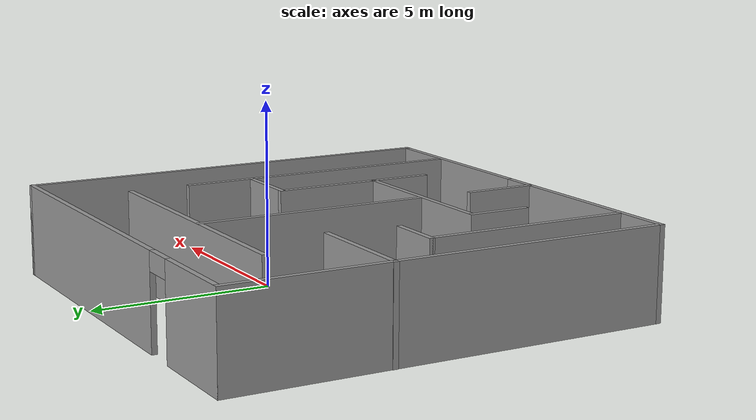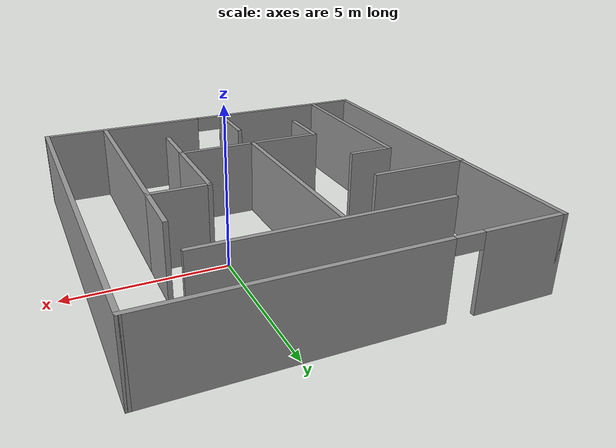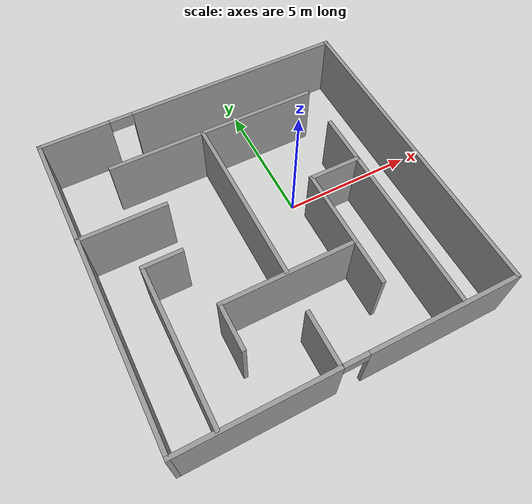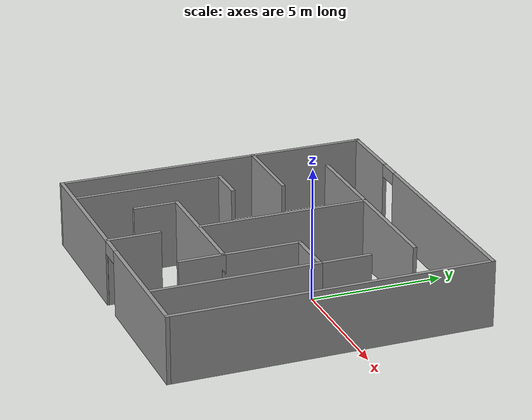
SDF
<?xml version='1.0'?>
<sdf version='1.6'>
  <model name='maze'>
    <pose frame=''>-1.76455 -0.92591 0 0 -0 0</pose>
    <link name='Wall_0'>
      <pose frame=''>0.006534 -5.925 0 0 -0 3.14159</pose>
      <visual name='Wall_0_Visual_0'>
        <pose frame=''>-3.22455 0 1.25 0 -0 0</pose>
        <geometry>
          <box>
            <size>5.5509 0.15 2.5</size>
          </box>
        </geometry>
        <material>
          <script>
            <uri>file://media/materials/scripts/gazebo.material</uri>
            <name>Gazebo/Grey</name>
          </script>
          <ambient>1 1 1 1</ambient>
        </material>
        <meta>
          <layer>0</layer>
        </meta>
      </visual>
      <collision name='Wall_0_Collision_0'>
        <geometry>
          <box>
            <size>5.5509 0.15 2.5</size>
          </box>
        </geometry>
        <pose frame=''>-3.22455 0 1.25 0 -0 0</pose>
      </collision>
      <visual name='Wall_0_Visual_1'>
        <pose frame=''>3.22545 0 1.25 0 -0 0</pose>
        <geometry>
          <box>
            <size>5.5491 0.15 2.5</size>
          </box>
        </geometry>
        <material>
          <script>
            <uri>file://media/materials/scripts/gazebo.material</uri>
            <name>Gazebo/Grey</name>
          </script>
          <ambient>1 1 1 1</ambient>
        </material>
        <meta>
          <layer>0</layer>
        </meta>
      </visual>
      <collision name='Wall_0_Collision_1'>
        <geometry>
          <box>
            <size>5.5491 0.15 2.5</size>
          </box>
        </geometry>
        <pose frame=''>3.22545 0 1.25 0 -0 0</pose>
      </collision>
      <visual name='Wall_0_Visual_2'>
        <pose frame=''>0.000904 0 2.25 0 -0 0</pose>
        <geometry>
          <box>
            <size>0.9 0.15 0.5</size>
          </box>
        </geometry>
        <material>
          <script>
            <uri>file://media/materials/scripts/gazebo.material</uri>
            <name>Gazebo/Grey</name>
          </script>
          <ambient>1 1 1 1</ambient>
        </material>
        <meta>
          <layer>0</layer>
        </meta>
      </visual>
      <collision name='Wall_0_Collision_2'>
        <geometry>
          <box>
            <size>0.9 0.15 0.5</size>
          </box>
        </geometry>
        <pose frame=''>0.000904 0 2.25 0 -0 0</pose>
      </collision>
    </link>
    <link name='Wall_10'>
      <collision name='Wall_10_Collision'>
        <geometry>
          <box>
            <size>8 0.15 2.5</size>
          </box>
        </geometry>
        <pose frame=''>0 0 1.25 0 -0 0</pose>
      </collision>
      <visual name='Wall_10_Visual'>
        <pose frame=''>0 0 1.25 0 -0 0</pose>
        <geometry>
          <box>
            <size>8 0.15 2.5</size>
          </box>
        </geometry>
        <material>
          <script>
            <uri>file://media/materials/scripts/gazebo.material</uri>
            <name>Gazebo/Grey</name>
          </script>
          <ambient>1 1 1 1</ambient>
        </material>
        <meta>
          <layer>0</layer>
        </meta>
      </visual>
      <pose frame=''>-0.02748 3.8782 0 0 -0 0</pose>
    </link>
    <link name='Wall_12'>
      <collision name='Wall_12_Collision'>
        <geometry>
          <box>
            <size>2 0.15 2.5</size>
          </box>
        </geometry>
        <pose frame=''>0 0 1.25 0 -0 0</pose>
      </collision>
      <visual name='Wall_12_Visual'>
        <pose frame=''>0 0 1.25 0 -0 0</pose>
        <geometry>
          <box>
            <size>2 0.15 2.5</size>
          </box>
        </geometry>
        <material>
          <script>
            <uri>file://media/materials/scripts/gazebo.material</uri>
            <name>Gazebo/Grey</name>
          </script>
          <ambient>1 1 1 1</ambient>
        </material>
        <meta>
          <layer>0</layer>
        </meta>
      </visual>
      <pose frame=''>-0.505094 -4.93248 0 0 -0 1.5708</pose>
    </link>
    <link name='Wall_14'>
      <collision name='Wall_14_Collision'>
        <geometry>
          <box>
            <size>1.75 0.15 2.5</size>
          </box>
        </geometry>
        <pose frame=''>0 0 1.25 0 -0 0</pose>
      </collision>
      <visual name='Wall_14_Visual'>
        <pose frame=''>0 0 1.25 0 -0 0</pose>
        <geometry>
          <box>
            <size>1.75 0.15 2.5</size>
          </box>
        </geometry>
        <material>
          <script>
            <uri>file://media/materials/scripts/gazebo.material</uri>
            <name>Gazebo/Grey</name>
          </script>
          <ambient>1 1 1 1</ambient>
        </material>
        <meta>
          <layer>0</layer>
        </meta>
      </visual>
      <pose frame=''>-2.77143 -3.33379 0 0 -0 1.5708</pose>
    </link>
    <link name='Wall_18'>
      <collision name='Wall_18_Collision'>
        <geometry>
          <box>
            <size>6.5 0.15 2.5</size>
          </box>
        </geometry>
        <pose frame=''>0 0 1.25 0 -0 0</pose>
      </collision>
      <visual name='Wall_18_Visual'>
        <pose frame=''>0 0 1.25 0 -0 0</pose>
        <geometry>
          <box>
            <size>6.5 0.15 2.5</size>
          </box>
        </geometry>
        <material>
          <script>
            <uri>file://media/materials/scripts/gazebo.material</uri>
            <name>Gazebo/Grey</name>
          </script>
          <ambient>1 1 1 1</ambient>
        </material>
        <meta>
          <layer>0</layer>
        </meta>
      </visual>
      <pose frame=''>-0.441253 0.703195 0 0 -0 -1.5708</pose>
    </link>
    <link name='Wall_20'>
      <collision name='Wall_20_Collision'>
        <geometry>
          <box>
            <size>5 0.15 2.5</size>
          </box>
        </geometry>
        <pose frame=''>0 0 1.25 0 -0 0</pose>
      </collision>
      <visual name='Wall_20_Visual'>
        <pose frame=''>0 0 1.25 0 -0 0</pose>
        <geometry>
          <box>
            <size>5 0.15 2.5</size>
          </box>
        </geometry>
        <material>
          <script>
            <uri>file://media/materials/scripts/gazebo.material</uri>
            <name>Gazebo/Grey</name>
          </script>
          <ambient>1 1 1 1</ambient>
        </material>
        <meta>
          <layer>0</layer>
        </meta>
      </visual>
      <pose frame=''>-0.346431 -2.53378 0 0 -0 0</pose>
    </link>
    <link name='Wall_21'>
      <collision name='Wall_21_Collision'>
        <geometry>
          <box>
            <size>1.75 0.15 2.5</size>
          </box>
        </geometry>
        <pose frame=''>0 0 1.25 0 -0 0</pose>
      </collision>
      <visual name='Wall_21_Visual'>
        <pose frame=''>0 0 1.25 0 -0 0</pose>
        <geometry>
          <box>
            <size>1.75 0.15 2.5</size>
          </box>
        </geometry>
        <material>
          <script>
            <uri>file://media/materials/scripts/gazebo.material</uri>
            <name>Gazebo/Grey</name>
          </script>
          <ambient>1 1 1 1</ambient>
        </material>
        <meta>
          <layer>0</layer>
        </meta>
      </visual>
      <pose frame=''>2.07857 -3.33379 0 0 -0 -1.5708</pose>
    </link>
    <link name='Wall_23'>
      <collision name='Wall_23_Collision'>
        <geometry>
          <box>
            <size>3 0.15 2.5</size>
          </box>
        </geometry>
        <pose frame=''>0 0 1.25 0 -0 0</pose>
      </collision>
      <visual name='Wall_23_Visual'>
        <pose frame=''>0 0 1.25 0 -0 0</pose>
        <geometry>
          <box>
            <size>3 0.15 2.5</size>
          </box>
        </geometry>
        <material>
          <script>
            <uri>file://media/materials/scripts/gazebo.material</uri>
            <name>Gazebo/Grey</name>
          </script>
          <ambient>1 1 1 1</ambient>
        </material>
        <meta>
          <layer>0</layer>
        </meta>
      </visual>
      <pose frame=''>2.07857 -1.10878 0 0 -0 1.5708</pose>
    </link>
    <link name='Wall_25'>
      <collision name='Wall_25_Collision'>
        <geometry>
          <box>
            <size>2 0.15 2.5</size>
          </box>
        </geometry>
        <pose frame=''>0 0 1.25 0 -0 0</pose>
      </collision>
      <visual name='Wall_25_Visual'>
        <pose frame=''>0 0 1.25 0 -0 0</pose>
        <geometry>
          <box>
            <size>2 0.15 2.5</size>
          </box>
        </geometry>
        <material>
          <script>
            <uri>file://media/materials/scripts/gazebo.material</uri>
            <name>Gazebo/Grey</name>
          </script>
          <ambient>1 1 1 1</ambient>
        </material>
        <meta>
          <layer>0</layer>
        </meta>
      </visual>
      <pose frame=''>3.00357 0.316216 0 0 -0 0</pose>
    </link>
    <link name='Wall_26'>
      <collision name='Wall_26_Collision'>
        <geometry>
          <box>
            <size>2 0.15 2.5</size>
          </box>
        </geometry>
        <pose frame=''>0 0 1.25 0 -0 0</pose>
      </collision>
      <visual name='Wall_26_Visual'>
        <pose frame=''>0 0 1.25 0 -0 0</pose>
        <geometry>
          <box>
            <size>2 0.15 2.5</size>
          </box>
        </geometry>
        <material>
          <script>
            <uri>file://media/materials/scripts/gazebo.material</uri>
            <name>Gazebo/Grey</name>
          </script>
          <ambient>1 1 1 1</ambient>
        </material>
        <meta>
          <layer>0</layer>
        </meta>
      </visual>
      <pose frame=''>3.92857 1.24122 0 0 -0 1.5708</pose>
    </link>
    <link name='Wall_28'>
      <collision name='Wall_28_Collision'>
        <geometry>
          <box>
            <size>6.25 0.15 2.5</size>
          </box>
        </geometry>
        <pose frame=''>0 0 1.25 0 -0 0</pose>
      </collision>
      <visual name='Wall_28_Visual'>
        <pose frame=''>0 0 1.25 0 -0 0</pose>
        <geometry>
          <box>
            <size>6.25 0.15 2.5</size>
          </box>
        </geometry>
        <material>
          <script>
            <uri>file://media/materials/scripts/gazebo.material</uri>
            <name>Gazebo/Grey</name>
          </script>
          <ambient>1 1 1 1</ambient>
        </material>
        <meta>
          <layer>0</layer>
        </meta>
      </visual>
      <pose frame=''>3.92857 -2.73378 0 0 -0 -1.5708</pose>
    </link>
    <link name='Wall_30'>
      <collision name='Wall_30_Collision'>
        <geometry>
          <box>
            <size>5.75 0.15 2.5</size>
          </box>
        </geometry>
        <pose frame=''>0 0 1.25 0 -0 0</pose>
      </collision>
      <visual name='Wall_30_Visual'>
        <pose frame=''>0 0 1.25 0 -0 0</pose>
        <geometry>
          <box>
            <size>5.75 0.15 2.5</size>
          </box>
        </geometry>
        <material>
          <script>
            <uri>file://media/materials/scripts/gazebo.material</uri>
            <name>Gazebo/Grey</name>
          </script>
          <ambient>1 1 1 1</ambient>
        </material>
        <meta>
          <layer>0</layer>
        </meta>
      </visual>
      <pose frame=''>-4.41991 -3.07357 0 0 -0 1.5708</pose>
    </link>
    <link name='Wall_31'>
      <collision name='Wall_31_Collision'>
        <geometry>
          <box>
            <size>1.5 0.15 2.5</size>
          </box>
        </geometry>
        <pose frame=''>0 0 1.25 0 -0 0</pose>
      </collision>
      <visual name='Wall_31_Visual'>
        <pose frame=''>0 0 1.25 0 -0 0</pose>
        <geometry>
          <box>
            <size>1.5 0.15 2.5</size>
          </box>
        </geometry>
        <material>
          <script>
            <uri>file://media/materials/scripts/gazebo.material</uri>
            <name>Gazebo/Grey</name>
          </script>
          <ambient>1 1 1 1</ambient>
        </material>
        <meta>
          <layer>0</layer>
        </meta>
      </visual>
      <pose frame=''>-3.74492 -0.273568 0 0 -0 0</pose>
    </link>
    <link name='Wall_4'>
      <collision name='Wall_4_Collision'>
        <geometry>
          <box>
            <size>12 0.15 2.5</size>
          </box>
        </geometry>
        <pose frame=''>0 0 1.25 0 -0 0</pose>
      </collision>
      <visual name='Wall_4_Visual'>
        <pose frame=''>0 0 1.25 0 -0 0</pose>
        <geometry>
          <box>
            <size>12 0.15 2.5</size>
          </box>
        </geometry>
        <material>
          <script>
            <uri>file://media/materials/scripts/gazebo.material</uri>
            <name>Gazebo/Grey</name>
          </script>
          <ambient>1 1 1 1</ambient>
        </material>
        <meta>
          <layer>0</layer>
        </meta>
      </visual>
      <pose frame=''>-5.91847 0 0 0 -0 1.5708</pose>
    </link>
    <link name='Wall_5'>
      <pose frame=''>0.006534 5.925 0 0 -0 0</pose>
      <visual name='Wall_5_Visual_0'>
        <pose frame=''>-4.6459 0 1.25 0 -0 0</pose>
        <geometry>
          <box>
            <size>2.70819 0.15 2.5</size>
          </box>
        </geometry>
        <material>
          <script>
            <uri>file://media/materials/scripts/gazebo.material</uri>
            <name>Gazebo/Grey</name>
          </script>
          <ambient>1 1 1 1</ambient>
        </material>
        <meta>
          <layer>0</layer>
        </meta>
      </visual>
      <collision name='Wall_5_Collision_0'>
        <geometry>
          <box>
            <size>2.70819 0.15 2.5</size>
          </box>
        </geometry>
        <pose frame=''>-4.6459 0 1.25 0 -0 0</pose>
      </collision>
      <visual name='Wall_5_Visual_1'>
        <pose frame=''>1.8041 0 1.25 0 -0 0</pose>
        <geometry>
          <box>
            <size>8.3918 0.15 2.5</size>
          </box>
        </geometry>
        <material>
          <script>
            <uri>file://media/materials/scripts/gazebo.material</uri>
            <name>Gazebo/Grey</name>
          </script>
          <ambient>1 1 1 1</ambient>
        </material>
        <meta>
          <layer>0</layer>
        </meta>
      </visual>
      <collision name='Wall_5_Collision_1'>
        <geometry>
          <box>
            <size>8.3918 0.15 2.5</size>
          </box>
        </geometry>
        <pose frame=''>1.8041 0 1.25 0 -0 0</pose>
      </collision>
      <visual name='Wall_5_Visual_2'>
        <pose frame=''>-2.8418 0 2.25 0 -0 0</pose>
        <geometry>
          <box>
            <size>0.9 0.15 0.5</size>
          </box>
        </geometry>
        <material>
          <script>
            <uri>file://media/materials/scripts/gazebo.material</uri>
            <name>Gazebo/Grey</name>
          </script>
          <ambient>1 1 1 1</ambient>
        </material>
        <meta>
          <layer>0</layer>
        </meta>
      </visual>
      <collision name='Wall_5_Collision_2'>
        <geometry>
          <box>
            <size>0.9 0.15 0.5</size>
          </box>
        </geometry>
        <pose frame=''>-2.8418 0 2.25 0 -0 0</pose>
      </collision>
    </link>
    <link name='Wall_6'>
      <collision name='Wall_6_Collision'>
        <geometry>
          <box>
            <size>12 0.15 2.5</size>
          </box>
        </geometry>
        <pose frame=''>0 0 1.25 0 -0 0</pose>
      </collision>
      <visual name='Wall_6_Visual'>
        <pose frame=''>0 0 1.25 0 -0 0</pose>
        <geometry>
          <box>
            <size>12 0.15 2.5</size>
          </box>
        </geometry>
        <material>
          <script>
            <uri>file://media/materials/scripts/gazebo.material</uri>
            <name>Gazebo/Grey</name>
          </script>
          <ambient>1 1 1 1</ambient>
        </material>
        <meta>
          <layer>0</layer>
        </meta>
      </visual>
      <pose frame=''>5.93153 0 0 0 -0 -1.5708</pose>
    </link>
    <link name='Wall_8'>
      <collision name='Wall_8_Collision'>
        <geometry>
          <box>
            <size>3.25 0.15 2.5</size>
          </box>
        </geometry>
        <pose frame=''>0 0 1.25 0 -0 0</pose>
      </collision>
      <visual name='Wall_8_Visual'>
        <pose frame=''>0 0 1.25 0 -0 0</pose>
        <geometry>
          <box>
            <size>3.25 0.15 2.5</size>
          </box>
        </geometry>
        <material>
          <script>
            <uri>file://media/materials/scripts/gazebo.material</uri>
            <name>Gazebo/Grey</name>
          </script>
          <ambient>1 1 1 1</ambient>
        </material>
        <meta>
          <layer>0</layer>
        </meta>
      </visual>
      <pose frame=''>-4.38153 1.61186 0 0 -0 0</pose>
    </link>
    <static>1</static>
  </model>
</sdf>
